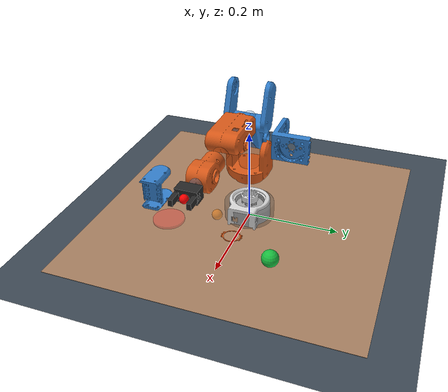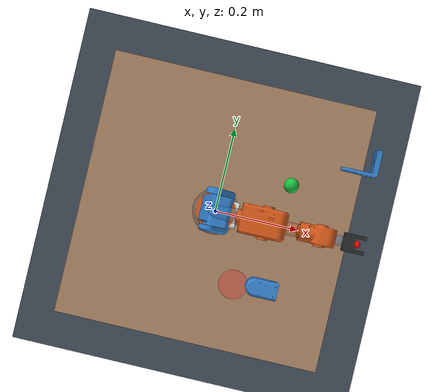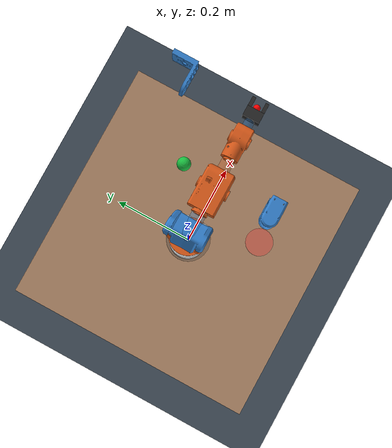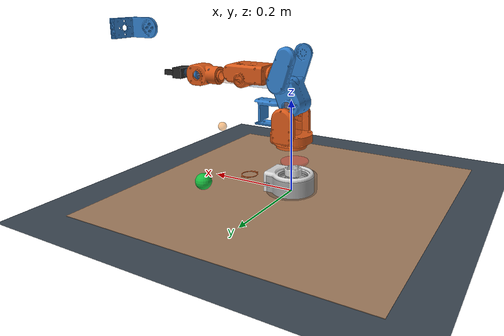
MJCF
<mujoco model="mecharm_scene">
  <include file="model.xml"/>
  <visual>
    <headlight diffuse="0.6 0.6 0.6" ambient="0.3 0.3 0.3" specular="0.1 0.1 0.1"/>
    <rgba haze="0.15 0.25 0.35 1"/>
  </visual>
  <asset>
    <texture type="skybox" builtin="gradient" rgb1="0.3 0.45 0.65" rgb2="0 0 0" width="512" height="3072"/>
    <texture type="2d" name="groundplane" builtin="checker" mark="edge"
             rgb1="0.30 0.35 0.40" rgb2="0.18 0.22 0.26" markrgb="0.8 0.8 0.8"
             width="300" height="300"/>
    <material name="groundplane" texture="groundplane" texuniform="true" texrepeat="5 5" reflectance="0.2"/>
    <material name="table_mat" rgba="0.65 0.50 0.38 1"/>
  </asset>
  <worldbody>
    <geom name="floor" type="plane" size="0 0 0.05" material="groundplane"/>
    <geom name="table_top" type="box" size="0.32 0.32 0.010" pos="0 0 -0.010" material="table_mat"/>
    <light name="main_light" pos="0 0 1.4" dir="0 0 -1" directional="true" diffuse="0.8 0.8 0.8"/>
    <light name="fill_light" pos="0.5 -0.6 0.8" dir="-0.5 0.5 -1" diffuse="0.4 0.4 0.4"/>
  </worldbody>
</mujoco>

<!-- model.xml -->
<mujoco model="mecharm_pi">
  <compiler angle="radian" autolimits="true" meshdir="assets"/>
  <option timestep="0.01" gravity="0 0 0" integrator="Euler"/>

  <default>
    <joint limited="true" damping="1.0" armature="0.01"/>
    <geom contype="0" conaffinity="0"/>
    <site size="0.008"/>
  </default>

  <asset>
    <material name="mat_dark"   rgba="0.15 0.15 0.15 1"/>
    <material name="mat_light"  rgba="0.85 0.85 0.85 1"/>
    <material name="mat_orange" rgba="0.85 0.35 0.10 1"/>
    <material name="mat_blue"   rgba="0.20 0.50 0.80 1"/>
    <material name="mat_obj"    rgba="0.10 0.75 0.25 1"/>
    <mesh name="base_mesh"  file="base.obj"  scale="0.001 0.001 0.001"/>
    <mesh name="link1_mesh" file="link1.obj" scale="0.001 0.001 0.001"/>
    <mesh name="link2_mesh" file="link2.obj" scale="0.001 0.001 0.001"/>
    <mesh name="link3_mesh" file="link3.obj" scale="0.001 0.001 0.001"/>
    <mesh name="link4_mesh" file="link4.obj" scale="0.001 0.001 0.001"/>
    <mesh name="link5_mesh" file="link5.obj" scale="0.001 0.001 0.001"/>
    <mesh name="link6_mesh" file="link6.obj" scale="0.001 0.001 0.001"/>
  </asset>

  <worldbody>
    <body name="base" pos="0 0 0">
      <geom type="mesh" mesh="base_mesh" material="mat_light" contype="0" conaffinity="0" quat="0.707 0.707 0 0" pos="-0.00364 0.00001 -0.02754"/>
      <geom type="cylinder" size="0.055 0.018" pos="0 0 0.018" material="mat_dark" rgba="0.2 0.2 0.2 0.3"/>

      <body name="link1" pos="0 0 0.1360">
        <joint name="joint1" type="hinge" axis="0 0 1" range="-3.1416 3.1416"/>
        <geom type="mesh" mesh="link1_mesh" material="mat_orange" contype="0" conaffinity="0" quat="0.707 0.707 0 0" pos="0.00000 0.00064 -0.09430"/>
        <geom type="capsule" fromto="0 0 0 0 0 0.05" size="0.022" material="mat_orange" rgba="0.85 0.35 0.10 0.3"/>

        <body name="link2" pos="0 0 0.1000">
          <joint name="joint2" type="hinge" axis="0 1 0" range="-2.3562 2.3562"/>
          <geom type="mesh" mesh="link2_mesh" material="mat_blue" contype="0" conaffinity="0" quat="0.707 0.707 0 0" pos="-0.00857 0.00122 -0.16468"/>
          <geom type="capsule" fromto="0 0 0 0.1000 0 0" size="0.016" material="mat_blue" rgba="0.20 0.50 0.80 0.3"/>

          <body name="link3" pos="0.1000 0 0">
            <joint name="joint3" type="hinge" axis="0 1 0" range="-2.3562 2.3562"/>
            <geom type="mesh" mesh="link3_mesh" material="mat_orange" contype="0" conaffinity="0" quat="0.707 0.707 0 0" pos="0.00878 -0.00040 -0.21967"/>
            <geom type="capsule" fromto="0 0 0 0.1070 0 0" size="0.014" material="mat_orange" rgba="0.85 0.35 0.10 0.3"/>

            <body name="link4" pos="0.1070 0 0">
              <joint name="joint4" type="hinge" axis="1 0 0" range="-3.1416 3.1416"/>
              <geom type="mesh" mesh="link4_mesh" material="mat_blue" contype="0" conaffinity="0" quat="0.707 0.707 0 0" pos="0.14492 0.16540 -0.12101"/>
              <geom type="sphere" size="0.020" material="mat_blue" rgba="0.20 0.50 0.80 0.3"/>

              <body name="link5" pos="0.018 0 0">
                <joint name="joint5" type="hinge" axis="0 1 0" range="-2.3562 2.3562"/>
                <geom type="mesh" mesh="link5_mesh" material="mat_orange" contype="0" conaffinity="0" quat="0.707 0.707 0 0" pos="0.11177 0.00007 -0.23294"/>
                <geom type="sphere" size="0.018" material="mat_orange" rgba="0.85 0.35 0.10 0.3"/>

                <body name="link6" pos="0.018 0 0">
                  <joint name="joint6" type="hinge" axis="1 0 0" range="-3.1416 3.1416"/>
                  <geom type="mesh" mesh="link6_mesh" material="mat_blue" contype="0" conaffinity="0" quat="0.707 0.707 0 0" pos="0.16457 -0.00000 -0.23350"/>
                  <geom type="capsule" fromto="0 0 0 0.029 0 0" size="0.011" material="mat_blue" rgba="0.20 0.50 0.80 0.3"/>

                  <body name="gripper" pos="0.047 0 0">
                    <geom name="gripper_palm"  type="box" size="0.012 0.020 0.012" material="mat_dark"/>
                    <geom name="finger_left"   type="box" size="0.018 0.004 0.006" pos="0.018  0.016 0" material="mat_dark"/>
                    <geom name="finger_right"  type="box" size="0.018 0.004 0.006" pos="0.018 -0.016 0" material="mat_dark"/>
                    <site name="attachment_site" pos="0.018 0 0" rgba="1 0 0 1"/>
                  </body>
                </body>
              </body>
            </body>
          </body>
        </body>
      </body>
    </body>

    <body name="object" mocap="true" pos="0.16 0.10 0.025">
      <geom name="object_geom" type="sphere" size="0.018" material="mat_obj"/>
    </body>
    <body name="target" mocap="true" pos="0.18 0.00 0.12">
      <geom name="target_geom" type="sphere" size="0.010" rgba="1 0.5 0 0.45"/>
    </body>
    <body name="place_zone" pos="0.08 -0.16 0.003">
      <geom name="place_zone_geom" type="cylinder" size="0.035 0.003" rgba="1.0 0.2 0.2 0.35"/>
    </body>
  </worldbody>

  <actuator>
    <motor name="act1" joint="joint1" gear="1" ctrlrange="-3.1416 3.1416"/>
    <motor name="act2" joint="joint2" gear="1" ctrlrange="-2.3562 2.3562"/>
    <motor name="act3" joint="joint3" gear="1" ctrlrange="-2.3562 2.3562"/>
    <motor name="act4" joint="joint4" gear="1" ctrlrange="-3.1416 3.1416"/>
    <motor name="act5" joint="joint5" gear="1" ctrlrange="-2.3562 2.3562"/>
    <motor name="act6" joint="joint6" gear="1" ctrlrange="-3.1416 3.1416"/>
  </actuator>

  <keyframe>
    <key name="home" qpos="0 -0.75 1.05 0 -0.30 0"/>
  </keyframe>
</mujoco>
